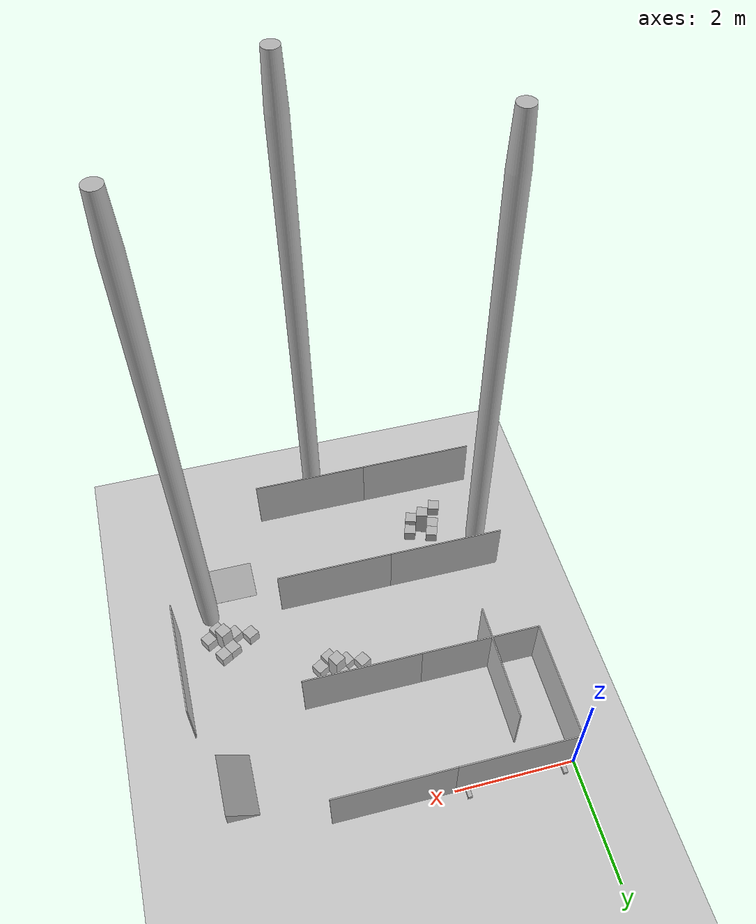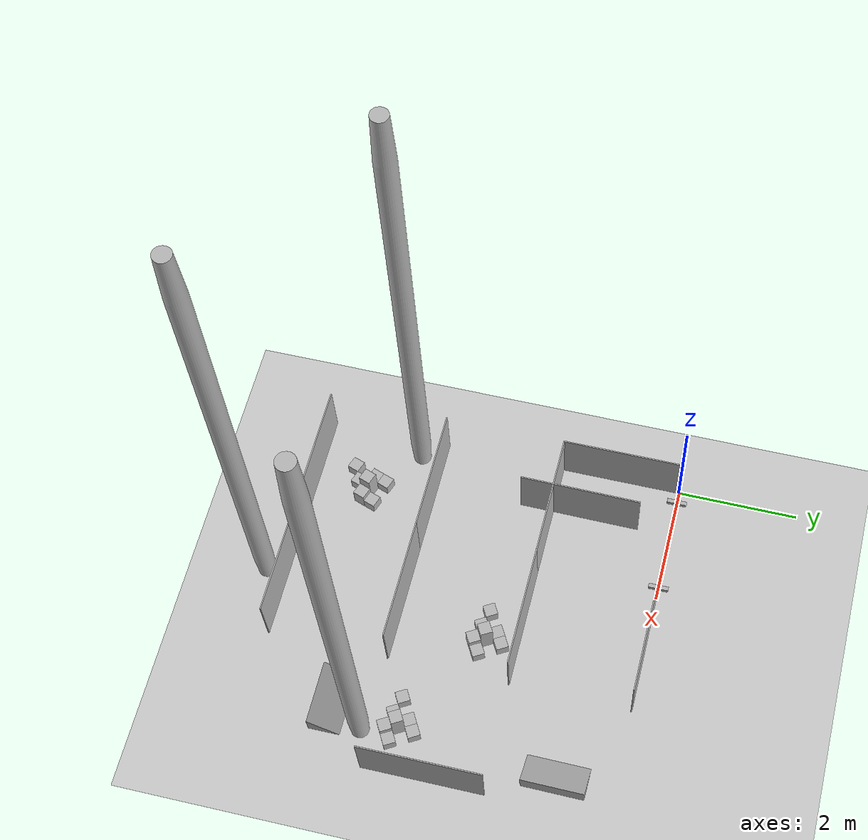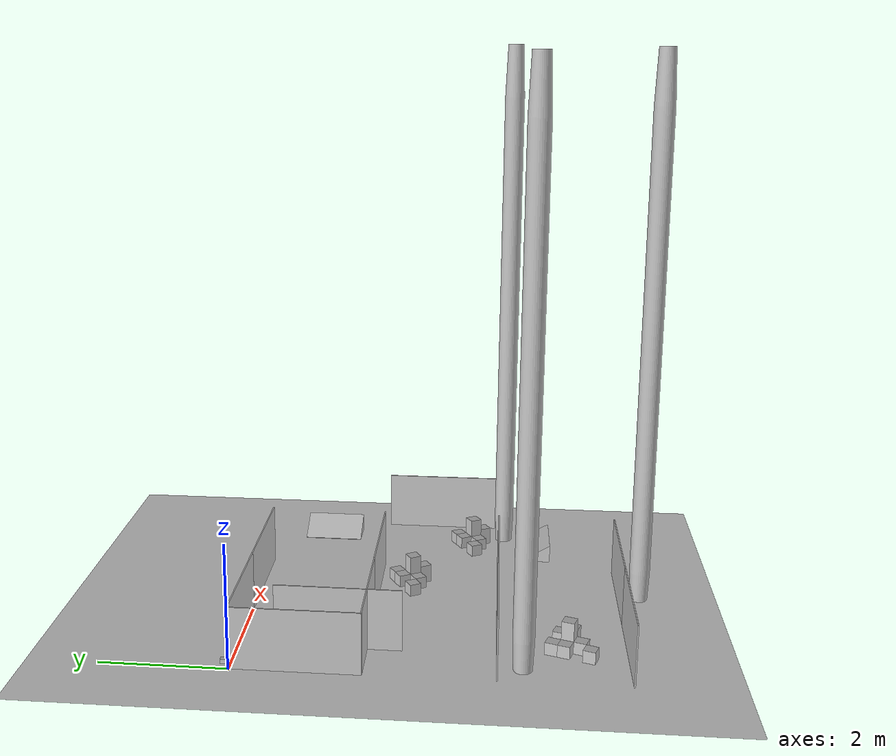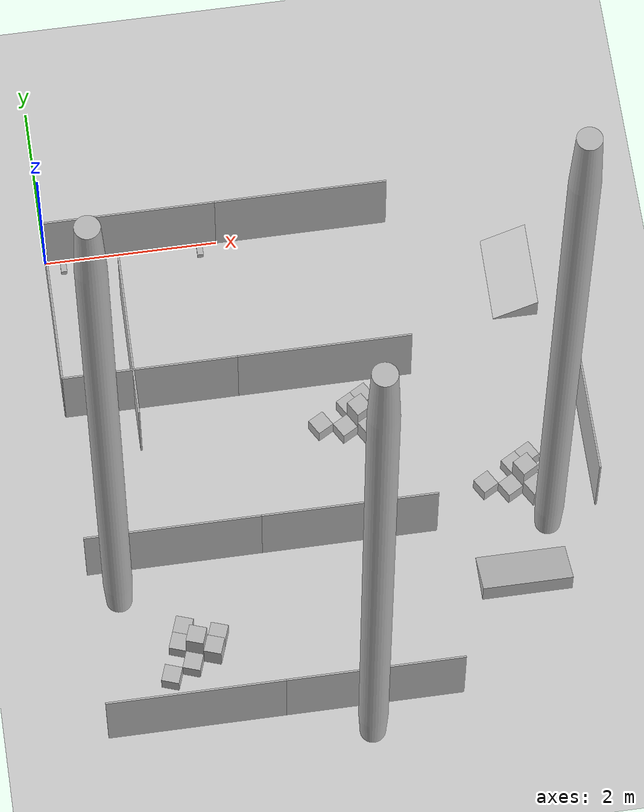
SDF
<sdf version="1.4">
 <world name="arena_HKT_16">
  <include><uri>model://ground_plane</uri></include>
  <include>
   <name>wall_2x1.649</name>
   <pose>1.0 -2.0 0.5130000114440918  0.0 0.0 0.0</pose>
   <uri>model://wall_2x1</uri>
  </include>
  <include>
   <name>wall_2x1.650</name>
   <pose>3.0 -2.0 0.5130000114440918  0.0 0.0 0.0</pose>
   <uri>model://wall_2x1</uri>
  </include>
  <include>
   <name>wall_2x1.651</name>
   <pose>0.8131518363952637 -1.549607276916504 0.5130000114440918  0.0 -0.0 4.704471588134766</pose>
   <uri>model://wall_2x1</uri>
  </include>
  <include>
   <name>wall_2x1.654</name>
   <pose>5.838257312774658 -2.9444475173950195 0.5130000114440918  0.0 -0.0 1.570796251296997</pose>
   <uri>model://wall_2x1</uri>
  </include>
  <include>
   <name>wall_2x1.656</name>
   <pose>1.0 -6.0 0.5130000114440918  0.0 0.0 0.0</pose>
   <uri>model://wall_2x1</uri>
  </include>
  <include>
   <name>wall_2x1.657</name>
   <pose>3.0 -6.0 0.5130000114440918  0.0 0.0 0.0</pose>
   <uri>model://wall_2x1</uri>
  </include>
  <include>
   <name>wall_2x1.660</name>
   <pose>0.0 -1.0 0.5130000114440918  0.0 -0.0 1.570796251296997</pose>
   <uri>model://wall_2x1</uri>
  </include>
  <include>
   <name>wall_2x1.661</name>
   <pose>3.0 -4.0 0.5130000114440918  0.0 0.0 0.0</pose>
   <uri>model://wall_2x1</uri>
  </include>
  <include>
   <name>wall_2x1.662</name>
   <pose>1.0 -4.0 0.5130000114440918  0.0 0.0 0.0</pose>
   <uri>model://wall_2x1</uri>
  </include>
  <include>
   <name>wall_2x1.666</name>
   <pose>3.0 0.0 0.5130000114440918  0.0 0.0 0.0</pose>
   <uri>model://wall_2x1</uri>
  </include>
  <include>
   <name>wall_stand.1457</name>
   <pose>0.19949999451637268 0.0 0.03449999913573265  0.0 -0.0 1.570796251296997</pose>
   <uri>model://wall_stand</uri>
  </include>
  <include>
   <name>wall_stand.1458</name>
   <pose>1.8005000352859497 0.0 0.03449999913573265  0.0 -0.0 1.570796251296997</pose>
   <uri>model://wall_stand</uri>
  </include>
  <include>
   <name>ramp.144</name>
   <pose>5.316980361938477 -0.9300249814987183 0.15000000596046448  0.0 -0.0 9.416860580444336</pose>
   <uri>model://ramp</uri>
  </include>
  <include>
   <name>wall_2x1.670</name>
   <pose>1.0 0.0 0.5130000114440918  0.0 0.0 0.0</pose>
   <uri>model://wall_2x1</uri>
  </include>
  <include>
   <name>wall_stand.1465</name>
   <pose>1.8005000352859497 0.0 0.03449999913573265  0.0 -0.0 1.570796251296997</pose>
   <uri>model://wall_stand</uri>
  </include>
  <include>
   <name>wall_stand.1466</name>
   <pose>0.19949999451637268 0.0 0.03449999913573265  0.0 -0.0 1.570796251296997</pose>
   <uri>model://wall_stand</uri>
  </include>
  <include>
   <name>cube_20x20.1655</name>
   <pose>4.973251819610596 -3.3717634677886963 0.10000000149011612  0.0 -0.0 3.6651763916015625</pose>
   <uri>model://cube_20x20</uri>
  </include>
  <include>
   <name>cube_20x20.1656</name>
   <pose>4.900042533874512 -3.6449673175811768 0.10000000149011612  0.0 -0.0 3.6651763916015625</pose>
   <uri>model://cube_20x20</uri>
  </include>
  <include>
   <name>cube_20x20.1657</name>
   <pose>4.626838684082031 -3.5717580318450928 0.10000000149011612  0.0 -0.0 3.6651763916015625</pose>
   <uri>model://cube_20x20</uri>
  </include>
  <include>
   <name>cube_20x20.1658</name>
   <pose>5.146458625793457 -3.271765947341919 0.10000000149011612  0.0 -0.0 3.6651763916015625</pose>
   <uri>model://cube_20x20</uri>
  </include>
  <include>
   <name>cube_20x20.1659</name>
   <pose>5.3464531898498535 -3.6181790828704834 0.10000000149011612  0.0 -0.0 3.6651763916015625</pose>
   <uri>model://cube_20x20</uri>
  </include>
  <include>
   <name>cube_20x20.1660</name>
   <pose>4.973251819610596 -3.3717634677886963 0.10000000149011612  0.0 -0.0 3.6651763916015625</pose>
   <uri>model://cube_20x20</uri>
  </include>
  <include>
   <name>cube_20x20.1661</name>
   <pose>4.900042533874512 -3.6449673175811768 0.10000000149011612  0.0 -0.0 3.6651763916015625</pose>
   <uri>model://cube_20x20</uri>
  </include>
  <include>
   <name>cube_20x20.1662</name>
   <pose>4.626838684082031 -3.5717580318450928 0.10000000149011612  0.0 -0.0 3.6651763916015625</pose>
   <uri>model://cube_20x20</uri>
  </include>
  <include>
   <name>cube_20x20.1663</name>
   <pose>5.146458625793457 -3.271765947341919 0.10000000149011612  0.0 -0.0 3.6651763916015625</pose>
   <uri>model://cube_20x20</uri>
  </include>
  <include>
   <name>cube_20x20.1664</name>
   <pose>5.3464531898498535 -3.6181790828704834 0.10000000149011612  0.0 -0.0 3.6651763916015625</pose>
   <uri>model://cube_20x20</uri>
  </include>
  <include>
   <name>cube_20x20.1685</name>
   <pose>3.2194247245788574 -2.3717634677886963 0.10000000149011612  0.0 -0.0 3.6651763916015625</pose>
   <uri>model://cube_20x20</uri>
  </include>
  <include>
   <name>cube_20x20.1686</name>
   <pose>2.873011827468872 -2.5717580318450928 0.10000000149011612  0.0 -0.0 3.6651763916015625</pose>
   <uri>model://cube_20x20</uri>
  </include>
  <include>
   <name>cube_20x20.1687</name>
   <pose>3.3926315307617188 -2.271765947341919 0.10000000149011612  0.0 -0.0 3.6651763916015625</pose>
   <uri>model://cube_20x20</uri>
  </include>
  <include>
   <name>cube_20x20.1688</name>
   <pose>3.5926260948181152 -2.6181790828704834 0.10000000149011612  0.0 -0.0 3.6651763916015625</pose>
   <uri>model://cube_20x20</uri>
  </include>
  <include>
   <name>cube_20x20.1689</name>
   <pose>3.2194247245788574 -2.3717634677886963 0.10000000149011612  0.0 -0.0 3.6651763916015625</pose>
   <uri>model://cube_20x20</uri>
  </include>
  <include>
   <name>cube_20x20.1690</name>
   <pose>3.1462156772613525 -2.6449673175811768 0.10000000149011612  0.0 -0.0 3.6651763916015625</pose>
   <uri>model://cube_20x20</uri>
  </include>
  <include>
   <name>cube_20x20.1691</name>
   <pose>2.873011827468872 -2.5717580318450928 0.10000000149011612  0.0 -0.0 3.6651763916015625</pose>
   <uri>model://cube_20x20</uri>
  </include>
  <include>
   <name>cube_20x20.1692</name>
   <pose>3.3926315307617188 -2.271765947341919 0.10000000149011612  0.0 -0.0 3.6651763916015625</pose>
   <uri>model://cube_20x20</uri>
  </include>
  <include>
   <name>cube_20x20.1693</name>
   <pose>3.5926260948181152 -2.6181790828704834 0.10000000149011612  0.0 -0.0 3.6651763916015625</pose>
   <uri>model://cube_20x20</uri>
  </include>
  <include>
   <name>cube_20x20.1694</name>
   <pose>0.9221256971359253 -5.038193702697754 0.10000000149011612  0.0 0.0 4.376082897186279</pose>
   <uri>model://cube_20x20</uri>
  </include>
  <include>
   <name>cube_20x20.1695</name>
   <pose>1.0449215173721313 -5.292989730834961 0.10000000149011612  0.0 0.0 4.376082897186279</pose>
   <uri>model://cube_20x20</uri>
  </include>
  <include>
   <name>cube_20x20.1696</name>
   <pose>0.7901250123977661 -5.415785789489746 0.10000000149011612  0.0 0.0 4.376082897186279</pose>
   <uri>model://cube_20x20</uri>
  </include>
  <include>
   <name>cube_20x20.1697</name>
   <pose>0.9881266355514526 -4.849397659301758 0.10000000149011612  0.0 0.0 4.376082897186279</pose>
   <uri>model://cube_20x20</uri>
  </include>
  <include>
   <name>cube_20x20.1698</name>
   <pose>1.3657182455062866 -4.981398582458496 0.10000000149011612  0.0 0.0 4.376082897186279</pose>
   <uri>model://cube_20x20</uri>
  </include>
  <include>
   <name>cube_20x20.1699</name>
   <pose>0.9221256971359253 -5.038193702697754 0.10000000149011612  0.0 0.0 4.376082897186279</pose>
   <uri>model://cube_20x20</uri>
  </include>
  <include>
   <name>cube_20x20.1700</name>
   <pose>1.0449215173721313 -5.292989730834961 0.10000000149011612  0.0 0.0 4.376082897186279</pose>
   <uri>model://cube_20x20</uri>
  </include>
  <include>
   <name>cube_20x20.1701</name>
   <pose>0.7901250123977661 -5.415785789489746 0.10000000149011612  0.0 0.0 4.376082897186279</pose>
   <uri>model://cube_20x20</uri>
  </include>
  <include>
   <name>cube_20x20.1702</name>
   <pose>0.9881266355514526 -4.849397659301758 0.10000000149011612  0.0 0.0 4.376082897186279</pose>
   <uri>model://cube_20x20</uri>
  </include>
  <include>
   <name>cube_20x20.1703</name>
   <pose>1.3657182455062866 -4.981398582458496 0.10000000149011612  0.0 0.0 4.376082897186279</pose>
   <uri>model://cube_20x20</uri>
  </include>
  <include>
   <name>cube_20x30.303</name>
   <pose>5.173246383666992 -3.7181766033172607 0.15000000596046448  0.0 -0.0 3.6651763916015625</pose>
   <uri>model://cube_20x30</uri>
  </include>
  <include>
   <name>cube_20x30.304</name>
   <pose>5.173246383666992 -3.7181766033172607 0.15000000596046448  0.0 -0.0 3.6651763916015625</pose>
   <uri>model://cube_20x30</uri>
  </include>
  <include>
   <name>cube_20x30.309</name>
   <pose>3.419419288635254 -2.7181766033172607 0.15000000596046448  0.0 -0.0 3.6651763916015625</pose>
   <uri>model://cube_20x30</uri>
  </include>
  <include>
   <name>cube_20x30.310</name>
   <pose>3.419419288635254 -2.7181766033172607 0.15000000596046448  0.0 -0.0 3.6651763916015625</pose>
   <uri>model://cube_20x30</uri>
  </include>
  <include>
   <name>cube_20x30.311</name>
   <pose>1.2997175455093384 -5.170195579528809 0.15000000596046448  0.0 0.0 4.376082897186279</pose>
   <uri>model://cube_20x30</uri>
  </include>
  <include>
   <name>cube_20x30.312</name>
   <pose>1.2997175455093384 -5.170195579528809 0.15000000596046448  0.0 0.0 4.376082897186279</pose>
   <uri>model://cube_20x30</uri>
  </include>
  <include>
   <name>cube_20x50.297</name>
   <pose>5.073248863220215 -3.5449702739715576 0.25  0.0 -0.0 3.6651763916015625</pose>
   <uri>model://cube_20x50</uri>
  </include>
  <include>
   <name>cube_20x50.298</name>
   <pose>5.073248863220215 -3.5449702739715576 0.25  0.0 -0.0 3.6651763916015625</pose>
   <uri>model://cube_20x50</uri>
  </include>
  <include>
   <name>cube_20x50.303</name>
   <pose>3.3194220066070557 -2.5449702739715576 0.25  0.0 -0.0 3.6651763916015625</pose>
   <uri>model://cube_20x50</uri>
  </include>
  <include>
   <name>cube_20x50.304</name>
   <pose>3.3194220066070557 -2.5449702739715576 0.25  0.0 -0.0 3.6651763916015625</pose>
   <uri>model://cube_20x50</uri>
  </include>
  <include>
   <name>cube_20x50.305</name>
   <pose>1.1109219789505005 -5.104194641113281 0.25  0.0 0.0 4.376082897186279</pose>
   <uri>model://cube_20x50</uri>
  </include>
  <include>
   <name>cube_20x50.306</name>
   <pose>1.1109219789505005 -5.104194641113281 0.25  0.0 0.0 4.376082897186279</pose>
   <uri>model://cube_20x50</uri>
  </include>
  <include>
   <name>ramp.148</name>
   <pose>4.894723415374756 -4.667043685913086 0.15000000596046448  0.0 -0.0 7.853981971740723</pose>
   <uri>model://ramp</uri>
  </include>
  <include>
   <name>barrel_110l.121</name>
   <pose>5.2558698654174805 -4.10173225402832 0.0  0.0 0.0 0.0</pose>
   <uri>model://barrel_110l</uri>
  </include>
  <include>
   <name>barrel_110l.124</name>
   <pose>0.32114124298095703 -4.385210990905762 0.0  0.0 0.0 0.0</pose>
   <uri>model://barrel_110l</uri>
  </include>
  <include>
   <name>barrel_110l.126</name>
   <pose>2.9211745262145996 -6.340419769287109 0.0  0.0 0.0 0.0</pose>
   <uri>model://barrel_110l</uri>
  </include>
 </world>
</sdf>
